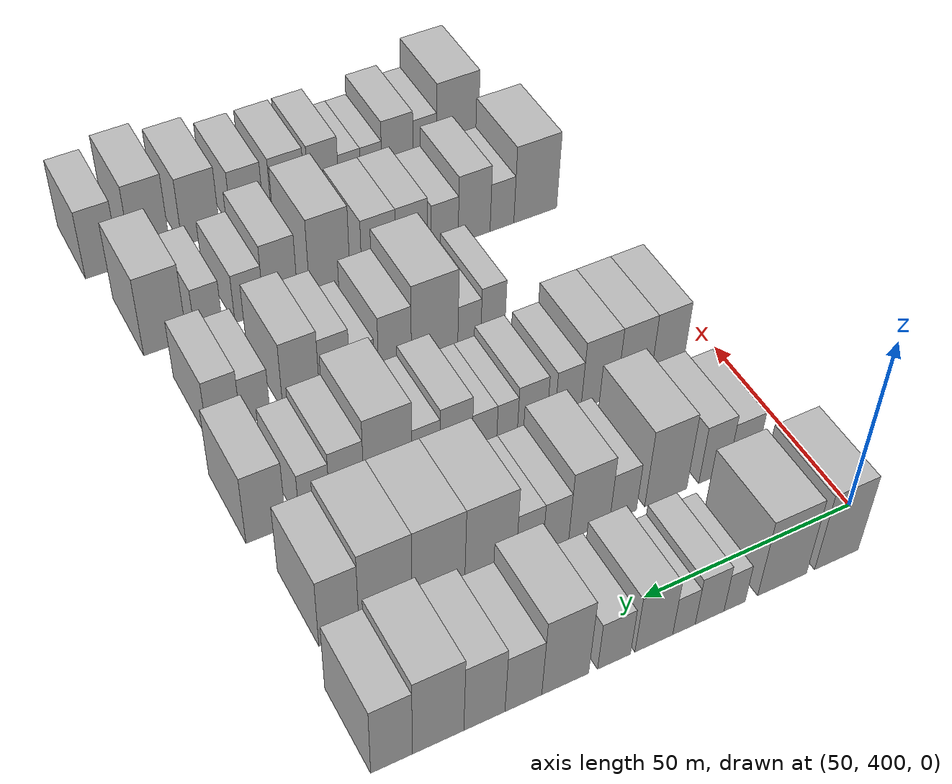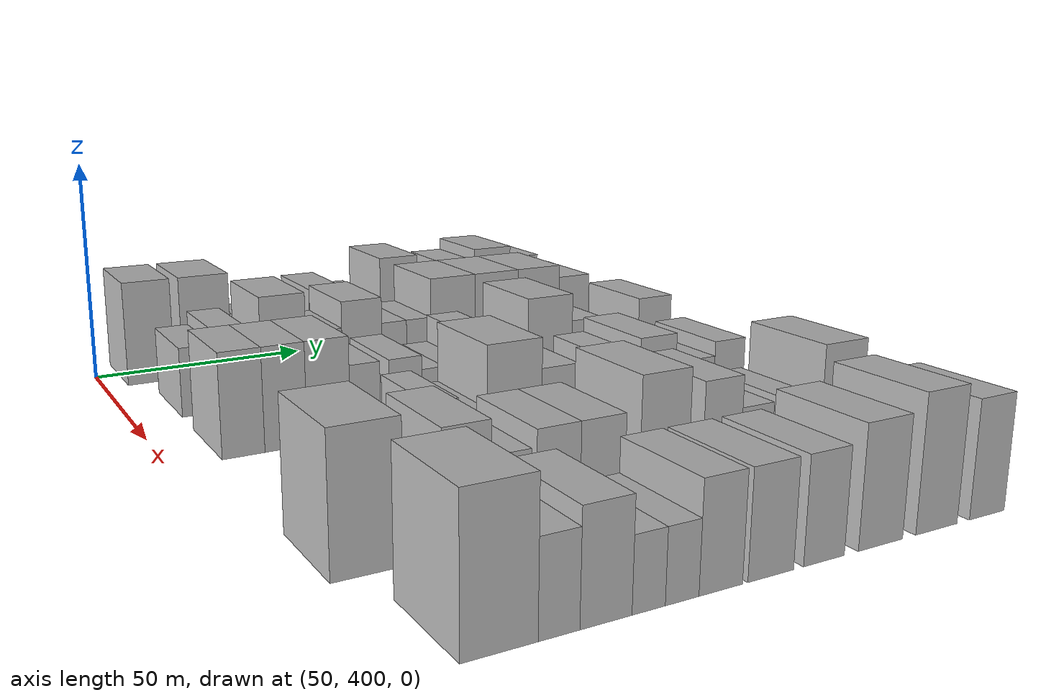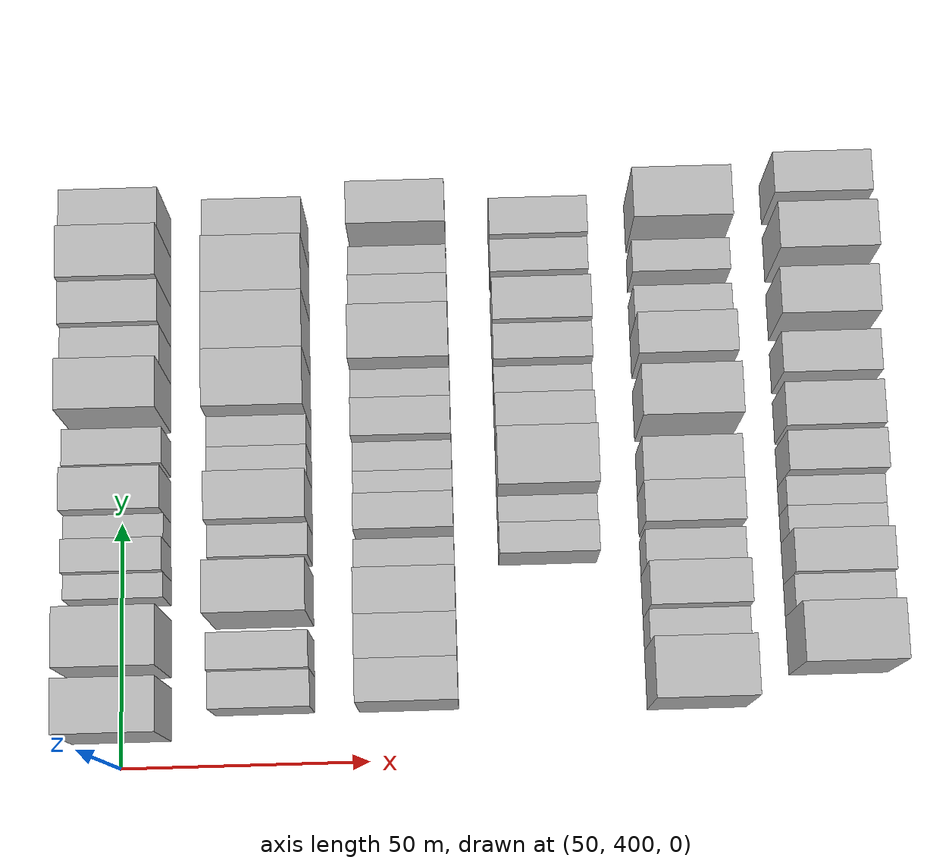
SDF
<sdf version="1.6">
 <world name="default">
  <model name="building_99">
   <static>1</static>
   <pose>50.0000 410.6496 0 0.000000 0.000000 0.000000</pose>
   <link name="link">
    <pose>0 0 12.00 0 0 0</pose>
    <collision name="collision"><geometry><box><size>20.0000 10.7286 24.0000</size></box></geometry></collision>
    <visual name="visual">
     <cast_shadows>0</cast_shadows>
     <geometry><box><size>20.0000 10.7286 24.0000</size></box></geometry>
     <material>
      <script>
       <uri>model://HANNAS_wall/materials/scripts</uri>
       <uri>model://HANNAS_wall/materials/textures</uri>
       <name>vrc/HANNAS_wall</name>
      </script>
     </material>
    </visual>
   </link>
  </model>
  <model name="building_100">
   <static>1</static>
   <pose>50.0000 423.9099 0 0.000000 0.000000 0.000000</pose>
   <link name="link">
    <pose>0 0 12.00 0 0 0</pose>
    <collision name="collision"><geometry><box><size>20.0000 11.7919 24.0000</size></box></geometry></collision>
    <visual name="visual">
     <cast_shadows>0</cast_shadows>
     <geometry><box><size>20.0000 11.7919 24.0000</size></box></geometry>
     <material>
      <script>
       <uri>model://HANNAS_wall/materials/scripts</uri>
       <uri>model://HANNAS_wall/materials/textures</uri>
       <name>vrc/HANNAS_wall</name>
      </script>
     </material>
    </visual>
   </link>
  </model>
  <model name="building_101">
   <static>1</static>
   <pose>50.0000 435.3170 0 0.000000 0.000000 0.000000</pose>
   <link name="link">
    <pose>0 0 6.00 0 0 0</pose>
    <collision name="collision"><geometry><box><size>20.0000 5.0224 12.0000</size></box></geometry></collision>
    <visual name="visual">
     <cast_shadows>0</cast_shadows>
     <geometry><box><size>20.0000 5.0224 12.0000</size></box></geometry>
     <material>
      <script>
       <uri>model://HANNAS_wall/materials/scripts</uri>
       <uri>model://HANNAS_wall/materials/textures</uri>
       <name>vrc/HANNAS_wall</name>
      </script>
     </material>
    </visual>
   </link>
  </model>
  <model name="building_102">
   <static>1</static>
   <pose>50.0000 441.2024 0 0.000000 0.000000 0.000000</pose>
   <link name="link">
    <pose>0 0 7.50 0 0 0</pose>
    <collision name="collision"><geometry><box><size>20.0000 6.7484 15.0000</size></box></geometry></collision>
    <visual name="visual">
     <cast_shadows>0</cast_shadows>
     <geometry><box><size>20.0000 6.7484 15.0000</size></box></geometry>
     <material>
      <script>
       <uri>model://HANNAS_wall/materials/scripts</uri>
       <uri>model://HANNAS_wall/materials/textures</uri>
       <name>vrc/HANNAS_wall</name>
      </script>
     </material>
    </visual>
   </link>
  </model>
  <model name="building_103">
   <static>1</static>
   <pose>50.0000 447.1799 0 0.000000 0.000000 0.000000</pose>
   <link name="link">
    <pose>0 0 6.00 0 0 0</pose>
    <collision name="collision"><geometry><box><size>20.0000 5.2066 12.0000</size></box></geometry></collision>
    <visual name="visual">
     <cast_shadows>0</cast_shadows>
     <geometry><box><size>20.0000 5.2066 12.0000</size></box></geometry>
     <material>
      <script>
       <uri>model://HANNAS_wall/materials/scripts</uri>
       <uri>model://HANNAS_wall/materials/textures</uri>
       <name>vrc/HANNAS_wall</name>
      </script>
     </material>
    </visual>
   </link>
  </model>
  <model name="building_104">
   <static>1</static>
   <pose>50.0000 454.1025 0 0.000000 0.000000 0.000000</pose>
   <link name="link">
    <pose>0 0 9.00 0 0 0</pose>
    <collision name="collision"><geometry><box><size>20.0000 8.6387 18.0000</size></box></geometry></collision>
    <visual name="visual">
     <cast_shadows>0</cast_shadows>
     <geometry><box><size>20.0000 8.6387 18.0000</size></box></geometry>
     <material>
      <script>
       <uri>model://HANNAS_wall/materials/scripts</uri>
       <uri>model://HANNAS_wall/materials/textures</uri>
       <name>vrc/HANNAS_wall</name>
      </script>
     </material>
    </visual>
   </link>
  </model>
  <model name="building_105">
   <static>1</static>
   <pose>50.0000 463.1273 0 0.000000 0.000000 0.000000</pose>
   <link name="link">
    <pose>0 0 7.50 0 0 0</pose>
    <collision name="collision"><geometry><box><size>20.0000 7.4109 15.0000</size></box></geometry></collision>
    <visual name="visual">
     <cast_shadows>0</cast_shadows>
     <geometry><box><size>20.0000 7.4109 15.0000</size></box></geometry>
     <material>
      <script>
       <uri>model://HANNAS_wall/materials/scripts</uri>
       <uri>model://HANNAS_wall/materials/textures</uri>
       <name>vrc/HANNAS_wall</name>
      </script>
     </material>
    </visual>
   </link>
  </model>
  <model name="building_106">
   <static>1</static>
   <pose>50.0000 474.0001 0 0.000000 0.000000 0.000000</pose>
   <link name="link">
    <pose>0 0 12.00 0 0 0</pose>
    <collision name="collision"><geometry><box><size>20.0000 10.3346 24.0000</size></box></geometry></collision>
    <visual name="visual">
     <cast_shadows>0</cast_shadows>
     <geometry><box><size>20.0000 10.3346 24.0000</size></box></geometry>
     <material>
      <script>
       <uri>model://HANNAS_wall/materials/scripts</uri>
       <uri>model://HANNAS_wall/materials/textures</uri>
       <name>vrc/HANNAS_wall</name>
      </script>
     </material>
    </visual>
   </link>
  </model>
  <model name="building_107">
   <static>1</static>
   <pose>50.0000 483.1509 0 0.000000 0.000000 0.000000</pose>
   <link name="link">
    <pose>0 0 9.00 0 0 0</pose>
    <collision name="collision"><geometry><box><size>20.0000 7.9672 18.0000</size></box></geometry></collision>
    <visual name="visual">
     <cast_shadows>0</cast_shadows>
     <geometry><box><size>20.0000 7.9672 18.0000</size></box></geometry>
     <material>
      <script>
       <uri>model://HANNAS_wall/materials/scripts</uri>
       <uri>model://HANNAS_wall/materials/textures</uri>
       <name>vrc/HANNAS_wall</name>
      </script>
     </material>
    </visual>
   </link>
  </model>
  <model name="building_108">
   <static>1</static>
   <pose>50.0000 491.5200 0 0.000000 0.000000 0.000000</pose>
   <link name="link">
    <pose>0 0 10.50 0 0 0</pose>
    <collision name="collision"><geometry><box><size>20.0000 8.7708 21.0000</size></box></geometry></collision>
    <visual name="visual">
     <cast_shadows>0</cast_shadows>
     <geometry><box><size>20.0000 8.7708 21.0000</size></box></geometry>
     <material>
      <script>
       <uri>model://HANNAS_wall/materials/scripts</uri>
       <uri>model://HANNAS_wall/materials/textures</uri>
       <name>vrc/HANNAS_wall</name>
      </script>
     </material>
    </visual>
   </link>
  </model>
  <model name="building_109">
   <static>1</static>
   <pose>50.0000 501.2824 0 0.000000 0.000000 0.000000</pose>
   <link name="link">
    <pose>0 0 12.00 0 0 0</pose>
    <collision name="collision"><geometry><box><size>20.0000 10.7541 24.0000</size></box></geometry></collision>
    <visual name="visual">
     <cast_shadows>0</cast_shadows>
     <geometry><box><size>20.0000 10.7541 24.0000</size></box></geometry>
     <material>
      <script>
       <uri>model://HANNAS_wall/materials/scripts</uri>
       <uri>model://HANNAS_wall/materials/textures</uri>
       <name>vrc/HANNAS_wall</name>
      </script>
     </material>
    </visual>
   </link>
  </model>
  <model name="building_110">
   <static>1</static>
   <pose>50.0000 510.9375 0 0.000000 0.000000 0.000000</pose>
   <link name="link">
    <pose>0 0 10.50 0 0 0</pose>
    <collision name="collision"><geometry><box><size>20.0000 8.5560 21.0000</size></box></geometry></collision>
    <visual name="visual">
     <cast_shadows>0</cast_shadows>
     <geometry><box><size>20.0000 8.5560 21.0000</size></box></geometry>
     <material>
      <script>
       <uri>model://HANNAS_wall/materials/scripts</uri>
       <uri>model://HANNAS_wall/materials/textures</uri>
       <name>vrc/HANNAS_wall</name>
      </script>
     </material>
    </visual>
   </link>
  </model>
  <model name="building_209">
   <static>1</static>
   <pose>79.0000 413.7463 0 0.000000 0.000000 0.000000</pose>
   <link name="link">
    <pose>0 0 7.50 0 0 0</pose>
    <collision name="collision"><geometry><box><size>20.0000 7.2908 15.0000</size></box></geometry></collision>
    <visual name="visual">
     <cast_shadows>0</cast_shadows>
     <geometry><box><size>20.0000 7.2908 15.0000</size></box></geometry>
     <material>
      <script>
       <uri>model://HANNAS_wall/materials/scripts</uri>
       <uri>model://HANNAS_wall/materials/textures</uri>
       <name>vrc/HANNAS_wall</name>
      </script>
     </material>
    </visual>
   </link>
  </model>
  <model name="building_210">
   <static>1</static>
   <pose>79.0000 421.0485 0 0.000000 0.000000 0.000000</pose>
   <link name="link">
    <pose>0 0 9.00 0 0 0</pose>
    <collision name="collision"><geometry><box><size>20.0000 7.3138 18.0000</size></box></geometry></collision>
    <visual name="visual">
     <cast_shadows>0</cast_shadows>
     <geometry><box><size>20.0000 7.3138 18.0000</size></box></geometry>
     <material>
      <script>
       <uri>model://HANNAS_wall/materials/scripts</uri>
       <uri>model://HANNAS_wall/materials/textures</uri>
       <name>vrc/HANNAS_wall</name>
      </script>
     </material>
    </visual>
   </link>
  </model>
  <model name="building_211">
   <static>1</static>
   <pose>79.0000 432.8737 0 0.000000 0.000000 0.000000</pose>
   <link name="link">
    <pose>0 0 12.00 0 0 0</pose>
    <collision name="collision"><geometry><box><size>20.0000 10.3365 24.0000</size></box></geometry></collision>
    <visual name="visual">
     <cast_shadows>0</cast_shadows>
     <geometry><box><size>20.0000 10.3365 24.0000</size></box></geometry>
     <material>
      <script>
       <uri>model://HANNAS_wall/materials/scripts</uri>
       <uri>model://HANNAS_wall/materials/textures</uri>
       <name>vrc/HANNAS_wall</name>
      </script>
     </material>
    </visual>
   </link>
  </model>
  <model name="building_212">
   <static>1</static>
   <pose>79.0000 443.2793 0 0.000000 0.000000 0.000000</pose>
   <link name="link">
    <pose>0 0 7.50 0 0 0</pose>
    <collision name="collision"><geometry><box><size>20.0000 6.4747 15.0000</size></box></geometry></collision>
    <visual name="visual">
     <cast_shadows>0</cast_shadows>
     <geometry><box><size>20.0000 6.4747 15.0000</size></box></geometry>
     <material>
      <script>
       <uri>model://HANNAS_wall/materials/scripts</uri>
       <uri>model://HANNAS_wall/materials/textures</uri>
       <name>vrc/HANNAS_wall</name>
      </script>
     </material>
    </visual>
   </link>
  </model>
  <model name="building_213">
   <static>1</static>
   <pose>79.0000 451.3792 0 0.000000 0.000000 0.000000</pose>
   <link name="link">
    <pose>0 0 10.50 0 0 0</pose>
    <collision name="collision"><geometry><box><size>20.0000 9.7251 21.0000</size></box></geometry></collision>
    <visual name="visual">
     <cast_shadows>0</cast_shadows>
     <geometry><box><size>20.0000 9.7251 21.0000</size></box></geometry>
     <material>
      <script>
       <uri>model://HANNAS_wall/materials/scripts</uri>
       <uri>model://HANNAS_wall/materials/textures</uri>
       <name>vrc/HANNAS_wall</name>
      </script>
     </material>
    </visual>
   </link>
  </model>
  <model name="building_214">
   <static>1</static>
   <pose>79.0000 459.3230 0 0.000000 0.000000 0.000000</pose>
   <link name="link">
    <pose>0 0 7.50 0 0 0</pose>
    <collision name="collision"><geometry><box><size>20.0000 6.1624 15.0000</size></box></geometry></collision>
    <visual name="visual">
     <cast_shadows>0</cast_shadows>
     <geometry><box><size>20.0000 6.1624 15.0000</size></box></geometry>
     <material>
      <script>
       <uri>model://HANNAS_wall/materials/scripts</uri>
       <uri>model://HANNAS_wall/materials/textures</uri>
       <name>vrc/HANNAS_wall</name>
      </script>
     </material>
    </visual>
   </link>
  </model>
  <model name="building_215">
   <static>1</static>
   <pose>79.0000 465.5050 0 0.000000 0.000000 0.000000</pose>
   <link name="link">
    <pose>0 0 7.50 0 0 0</pose>
    <collision name="collision"><geometry><box><size>20.0000 6.2018 15.0000</size></box></geometry></collision>
    <visual name="visual">
     <cast_shadows>0</cast_shadows>
     <geometry><box><size>20.0000 6.2018 15.0000</size></box></geometry>
     <material>
      <script>
       <uri>model://HANNAS_wall/materials/scripts</uri>
       <uri>model://HANNAS_wall/materials/textures</uri>
       <name>vrc/HANNAS_wall</name>
      </script>
     </material>
    </visual>
   </link>
  </model>
  <model name="building_216">
   <static>1</static>
   <pose>79.0000 474.4493 0 0.000000 0.000000 0.000000</pose>
   <link name="link">
    <pose>0 0 12.00 0 0 0</pose>
    <collision name="collision"><geometry><box><size>20.0000 11.6868 24.0000</size></box></geometry></collision>
    <visual name="visual">
     <cast_shadows>0</cast_shadows>
     <geometry><box><size>20.0000 11.6868 24.0000</size></box></geometry>
     <material>
      <script>
       <uri>model://HANNAS_wall/materials/scripts</uri>
       <uri>model://HANNAS_wall/materials/textures</uri>
       <name>vrc/HANNAS_wall</name>
      </script>
     </material>
    </visual>
   </link>
  </model>
  <model name="building_217">
   <static>1</static>
   <pose>79.0000 486.1725 0 0.000000 0.000000 0.000000</pose>
   <link name="link">
    <pose>0 0 12.00 0 0 0</pose>
    <collision name="collision"><geometry><box><size>20.0000 11.7596 24.0000</size></box></geometry></collision>
    <visual name="visual">
     <cast_shadows>0</cast_shadows>
     <geometry><box><size>20.0000 11.7596 24.0000</size></box></geometry>
     <material>
      <script>
       <uri>model://HANNAS_wall/materials/scripts</uri>
       <uri>model://HANNAS_wall/materials/textures</uri>
       <name>vrc/HANNAS_wall</name>
      </script>
     </material>
    </visual>
   </link>
  </model>
  <model name="building_218">
   <static>1</static>
   <pose>79.0000 497.8626 0 0.000000 0.000000 0.000000</pose>
   <link name="link">
    <pose>0 0 12.00 0 0 0</pose>
    <collision name="collision"><geometry><box><size>20.0000 11.6205 24.0000</size></box></geometry></collision>
    <visual name="visual">
     <cast_shadows>0</cast_shadows>
     <geometry><box><size>20.0000 11.6205 24.0000</size></box></geometry>
     <material>
      <script>
       <uri>model://HANNAS_wall/materials/scripts</uri>
       <uri>model://HANNAS_wall/materials/textures</uri>
       <name>vrc/HANNAS_wall</name>
      </script>
     </material>
    </visual>
   </link>
  </model>
  <model name="building_219">
   <static>1</static>
   <pose>79.0000 507.9875 0 0.000000 0.000000 0.000000</pose>
   <link name="link">
    <pose>0 0 10.50 0 0 0</pose>
    <collision name="collision"><geometry><box><size>20.0000 8.6292 21.0000</size></box></geometry></collision>
    <visual name="visual">
     <cast_shadows>0</cast_shadows>
     <geometry><box><size>20.0000 8.6292 21.0000</size></box></geometry>
     <material>
      <script>
       <uri>model://HANNAS_wall/materials/scripts</uri>
       <uri>model://HANNAS_wall/materials/textures</uri>
       <name>vrc/HANNAS_wall</name>
      </script>
     </material>
    </visual>
   </link>
  </model>
  <model name="building_316">
   <static>1</static>
   <pose>108.0000 414.2007 0 0.000000 0.000000 0.000000</pose>
   <link name="link">
    <pose>0 0 10.50 0 0 0</pose>
    <collision name="collision"><geometry><box><size>20.0000 8.4366 21.0000</size></box></geometry></collision>
    <visual name="visual">
     <cast_shadows>0</cast_shadows>
     <geometry><box><size>20.0000 8.4366 21.0000</size></box></geometry>
     <material>
      <script>
       <uri>model://HANNAS_wall/materials/scripts</uri>
       <uri>model://HANNAS_wall/materials/textures</uri>
       <name>vrc/HANNAS_wall</name>
      </script>
     </material>
    </visual>
   </link>
  </model>
  <model name="building_317">
   <static>1</static>
   <pose>108.0000 422.7526 0 0.000000 0.000000 0.000000</pose>
   <link name="link">
    <pose>0 0 10.50 0 0 0</pose>
    <collision name="collision"><geometry><box><size>20.0000 8.6672 21.0000</size></box></geometry></collision>
    <visual name="visual">
     <cast_shadows>0</cast_shadows>
     <geometry><box><size>20.0000 8.6672 21.0000</size></box></geometry>
     <material>
      <script>
       <uri>model://HANNAS_wall/materials/scripts</uri>
       <uri>model://HANNAS_wall/materials/textures</uri>
       <name>vrc/HANNAS_wall</name>
      </script>
     </material>
    </visual>
   </link>
  </model>
  <model name="building_318">
   <static>1</static>
   <pose>108.0000 431.6544 0 0.000000 0.000000 0.000000</pose>
   <link name="link">
    <pose>0 0 10.50 0 0 0</pose>
    <collision name="collision"><geometry><box><size>20.0000 9.1364 21.0000</size></box></geometry></collision>
    <visual name="visual">
     <cast_shadows>0</cast_shadows>
     <geometry><box><size>20.0000 9.1364 21.0000</size></box></geometry>
     <material>
      <script>
       <uri>model://HANNAS_wall/materials/scripts</uri>
       <uri>model://HANNAS_wall/materials/textures</uri>
       <name>vrc/HANNAS_wall</name>
      </script>
     </material>
    </visual>
   </link>
  </model>
  <model name="building_319">
   <static>1</static>
   <pose>108.0000 439.5161 0 0.000000 0.000000 0.000000</pose>
   <link name="link">
    <pose>0 0 7.50 0 0 0</pose>
    <collision name="collision"><geometry><box><size>20.0000 6.5869 15.0000</size></box></geometry></collision>
    <visual name="visual">
     <cast_shadows>0</cast_shadows>
     <geometry><box><size>20.0000 6.5869 15.0000</size></box></geometry>
     <material>
      <script>
       <uri>model://HANNAS_wall/materials/scripts</uri>
       <uri>model://HANNAS_wall/materials/textures</uri>
       <name>vrc/HANNAS_wall</name>
      </script>
     </material>
    </visual>
   </link>
  </model>
  <model name="building_320">
   <static>1</static>
   <pose>108.0000 448.4615 0 0.000000 0.000000 0.000000</pose>
   <link name="link">
    <pose>0 0 7.50 0 0 0</pose>
    <collision name="collision"><geometry><box><size>20.0000 7.3040 15.0000</size></box></geometry></collision>
    <visual name="visual">
     <cast_shadows>0</cast_shadows>
     <geometry><box><size>20.0000 7.3040 15.0000</size></box></geometry>
     <material>
      <script>
       <uri>model://HANNAS_wall/materials/scripts</uri>
       <uri>model://HANNAS_wall/materials/textures</uri>
       <name>vrc/HANNAS_wall</name>
      </script>
     </material>
    </visual>
   </link>
  </model>
  <model name="building_321">
   <static>1</static>
   <pose>108.0000 454.6419 0 0.000000 0.000000 0.000000</pose>
   <link name="link">
    <pose>0 0 6.00 0 0 0</pose>
    <collision name="collision"><geometry><box><size>20.0000 5.0567 12.0000</size></box></geometry></collision>
    <visual name="visual">
     <cast_shadows>0</cast_shadows>
     <geometry><box><size>20.0000 5.0567 12.0000</size></box></geometry>
     <material>
      <script>
       <uri>model://HANNAS_wall/materials/scripts</uri>
       <uri>model://HANNAS_wall/materials/textures</uri>
       <name>vrc/HANNAS_wall</name>
      </script>
     </material>
    </visual>
   </link>
  </model>
  <model name="building_322">
   <static>1</static>
   <pose>108.0000 460.1602 0 0.000000 0.000000 0.000000</pose>
   <link name="link">
    <pose>0 0 6.00 0 0 0</pose>
    <collision name="collision"><geometry><box><size>20.0000 5.9799 12.0000</size></box></geometry></collision>
    <visual name="visual">
     <cast_shadows>0</cast_shadows>
     <geometry><box><size>20.0000 5.9799 12.0000</size></box></geometry>
     <material>
      <script>
       <uri>model://HANNAS_wall/materials/scripts</uri>
       <uri>model://HANNAS_wall/materials/textures</uri>
       <name>vrc/HANNAS_wall</name>
      </script>
     </material>
    </visual>
   </link>
  </model>
  <model name="building_323">
   <static>1</static>
   <pose>108.0000 467.0199 0 0.000000 0.000000 0.000000</pose>
   <link name="link">
    <pose>0 0 9.00 0 0 0</pose>
    <collision name="collision"><geometry><box><size>20.0000 7.7395 18.0000</size></box></geometry></collision>
    <visual name="visual">
     <cast_shadows>0</cast_shadows>
     <geometry><box><size>20.0000 7.7395 18.0000</size></box></geometry>
     <material>
      <script>
       <uri>model://HANNAS_wall/materials/scripts</uri>
       <uri>model://HANNAS_wall/materials/textures</uri>
       <name>vrc/HANNAS_wall</name>
      </script>
     </material>
    </visual>
   </link>
  </model>
  <model name="building_324">
   <static>1</static>
   <pose>108.0000 474.1599 0 0.000000 0.000000 0.000000</pose>
   <link name="link">
    <pose>0 0 7.50 0 0 0</pose>
    <collision name="collision"><geometry><box><size>20.0000 6.5405 15.0000</size></box></geometry></collision>
    <visual name="visual">
     <cast_shadows>0</cast_shadows>
     <geometry><box><size>20.0000 6.5405 15.0000</size></box></geometry>
     <material>
      <script>
       <uri>model://HANNAS_wall/materials/scripts</uri>
       <uri>model://HANNAS_wall/materials/textures</uri>
       <name>vrc/HANNAS_wall</name>
      </script>
     </material>
    </visual>
   </link>
  </model>
  <model name="building_325">
   <static>1</static>
   <pose>108.0000 483.0061 0 0.000000 0.000000 0.000000</pose>
   <link name="link">
    <pose>0 0 12.00 0 0 0</pose>
    <collision name="collision"><geometry><box><size>20.0000 11.1519 24.0000</size></box></geometry></collision>
    <visual name="visual">
     <cast_shadows>0</cast_shadows>
     <geometry><box><size>20.0000 11.1519 24.0000</size></box></geometry>
     <material>
      <script>
       <uri>model://HANNAS_wall/materials/scripts</uri>
       <uri>model://HANNAS_wall/materials/textures</uri>
       <name>vrc/HANNAS_wall</name>
      </script>
     </material>
    </visual>
   </link>
  </model>
  <model name="building_326">
   <static>1</static>
   <pose>108.0000 492.5051 0 0.000000 0.000000 0.000000</pose>
   <link name="link">
    <pose>0 0 9.00 0 0 0</pose>
    <collision name="collision"><geometry><box><size>20.0000 7.8461 18.0000</size></box></geometry></collision>
    <visual name="visual">
     <cast_shadows>0</cast_shadows>
     <geometry><box><size>20.0000 7.8461 18.0000</size></box></geometry>
     <material>
      <script>
       <uri>model://HANNAS_wall/materials/scripts</uri>
       <uri>model://HANNAS_wall/materials/textures</uri>
       <name>vrc/HANNAS_wall</name>
      </script>
     </material>
    </visual>
   </link>
  </model>
  <model name="building_327">
   <static>1</static>
   <pose>108.0000 499.8992 0 0.000000 0.000000 0.000000</pose>
   <link name="link">
    <pose>0 0 7.50 0 0 0</pose>
    <collision name="collision"><geometry><box><size>20.0000 6.9422 15.0000</size></box></geometry></collision>
    <visual name="visual">
     <cast_shadows>0</cast_shadows>
     <geometry><box><size>20.0000 6.9422 15.0000</size></box></geometry>
     <material>
      <script>
       <uri>model://HANNAS_wall/materials/scripts</uri>
       <uri>model://HANNAS_wall/materials/textures</uri>
       <name>vrc/HANNAS_wall</name>
      </script>
     </material>
    </visual>
   </link>
  </model>
  <model name="building_328">
   <static>1</static>
   <pose>108.0000 510.8391 0 0.000000 0.000000 0.000000</pose>
   <link name="link">
    <pose>0 0 10.50 0 0 0</pose>
    <collision name="collision"><geometry><box><size>20.0000 8.9376 21.0000</size></box></geometry></collision>
    <visual name="visual">
     <cast_shadows>0</cast_shadows>
     <geometry><box><size>20.0000 8.9376 21.0000</size></box></geometry>
     <material>
      <script>
       <uri>model://HANNAS_wall/materials/scripts</uri>
       <uri>model://HANNAS_wall/materials/textures</uri>
       <name>vrc/HANNAS_wall</name>
      </script>
     </material>
    </visual>
   </link>
  </model>
  <model name="building_435">
   <static>1</static>
   <pose>137.0000 442.2341 0 0.000000 0.000000 0.000000</pose>
   <link name="link">
    <pose>0 0 7.50 0 0 0</pose>
    <collision name="collision"><geometry><box><size>20.0000 6.2194 15.0000</size></box></geometry></collision>
    <visual name="visual">
     <cast_shadows>0</cast_shadows>
     <geometry><box><size>20.0000 6.2194 15.0000</size></box></geometry>
     <material>
      <script>
       <uri>model://HANNAS_wall/materials/scripts</uri>
       <uri>model://HANNAS_wall/materials/textures</uri>
       <name>vrc/HANNAS_wall</name>
      </script>
     </material>
    </visual>
   </link>
  </model>
  <model name="building_436">
   <static>1</static>
   <pose>137.0000 448.2945 0 0.000000 0.000000 0.000000</pose>
   <link name="link">
    <pose>0 0 6.00 0 0 0</pose>
    <collision name="collision"><geometry><box><size>20.0000 5.9013 12.0000</size></box></geometry></collision>
    <visual name="visual">
     <cast_shadows>0</cast_shadows>
     <geometry><box><size>20.0000 5.9013 12.0000</size></box></geometry>
     <material>
      <script>
       <uri>model://HANNAS_wall/materials/scripts</uri>
       <uri>model://HANNAS_wall/materials/textures</uri>
       <name>vrc/HANNAS_wall</name>
      </script>
     </material>
    </visual>
   </link>
  </model>
  <model name="building_437">
   <static>1</static>
   <pose>137.0000 457.0926 0 0.000000 0.000000 0.000000</pose>
   <link name="link">
    <pose>0 0 12.00 0 0 0</pose>
    <collision name="collision"><geometry><box><size>20.0000 11.6949 24.0000</size></box></geometry></collision>
    <visual name="visual">
     <cast_shadows>0</cast_shadows>
     <geometry><box><size>20.0000 11.6949 24.0000</size></box></geometry>
     <material>
      <script>
       <uri>model://HANNAS_wall/materials/scripts</uri>
       <uri>model://HANNAS_wall/materials/textures</uri>
       <name>vrc/HANNAS_wall</name>
      </script>
     </material>
    </visual>
   </link>
  </model>
  <model name="building_438">
   <static>1</static>
   <pose>137.0000 467.0154 0 0.000000 0.000000 0.000000</pose>
   <link name="link">
    <pose>0 0 9.00 0 0 0</pose>
    <collision name="collision"><geometry><box><size>20.0000 8.1508 18.0000</size></box></geometry></collision>
    <visual name="visual">
     <cast_shadows>0</cast_shadows>
     <geometry><box><size>20.0000 8.1508 18.0000</size></box></geometry>
     <material>
      <script>
       <uri>model://HANNAS_wall/materials/scripts</uri>
       <uri>model://HANNAS_wall/materials/textures</uri>
       <name>vrc/HANNAS_wall</name>
      </script>
     </material>
    </visual>
   </link>
  </model>
  <model name="building_439">
   <static>1</static>
   <pose>137.0000 475.0720 0 0.000000 0.000000 0.000000</pose>
   <link name="link">
    <pose>0 0 6.00 0 0 0</pose>
    <collision name="collision"><geometry><box><size>20.0000 5.9625 12.0000</size></box></geometry></collision>
    <visual name="visual">
     <cast_shadows>0</cast_shadows>
     <geometry><box><size>20.0000 5.9625 12.0000</size></box></geometry>
     <material>
      <script>
       <uri>model://HANNAS_wall/materials/scripts</uri>
       <uri>model://HANNAS_wall/materials/textures</uri>
       <name>vrc/HANNAS_wall</name>
      </script>
     </material>
    </visual>
   </link>
  </model>
  <model name="building_440">
   <static>1</static>
   <pose>137.0000 481.7429 0 0.000000 0.000000 0.000000</pose>
   <link name="link">
    <pose>0 0 9.00 0 0 0</pose>
    <collision name="collision"><geometry><box><size>20.0000 7.3792 18.0000</size></box></geometry></collision>
    <visual name="visual">
     <cast_shadows>0</cast_shadows>
     <geometry><box><size>20.0000 7.3792 18.0000</size></box></geometry>
     <material>
      <script>
       <uri>model://HANNAS_wall/materials/scripts</uri>
       <uri>model://HANNAS_wall/materials/textures</uri>
       <name>vrc/HANNAS_wall</name>
      </script>
     </material>
    </visual>
   </link>
  </model>
  <model name="building_441">
   <static>1</static>
   <pose>137.0000 489.8302 0 0.000000 0.000000 0.000000</pose>
   <link name="link">
    <pose>0 0 10.50 0 0 0</pose>
    <collision name="collision"><geometry><box><size>20.0000 8.7955 21.0000</size></box></geometry></collision>
    <visual name="visual">
     <cast_shadows>0</cast_shadows>
     <geometry><box><size>20.0000 8.7955 21.0000</size></box></geometry>
     <material>
      <script>
       <uri>model://HANNAS_wall/materials/scripts</uri>
       <uri>model://HANNAS_wall/materials/textures</uri>
       <name>vrc/HANNAS_wall</name>
      </script>
     </material>
    </visual>
   </link>
  </model>
  <model name="building_442">
   <static>1</static>
   <pose>137.0000 500.6755 0 0.000000 0.000000 0.000000</pose>
   <link name="link">
    <pose>0 0 7.50 0 0 0</pose>
    <collision name="collision"><geometry><box><size>20.0000 6.8950 15.0000</size></box></geometry></collision>
    <visual name="visual">
     <cast_shadows>0</cast_shadows>
     <geometry><box><size>20.0000 6.8950 15.0000</size></box></geometry>
     <material>
      <script>
       <uri>model://HANNAS_wall/materials/scripts</uri>
       <uri>model://HANNAS_wall/materials/textures</uri>
       <name>vrc/HANNAS_wall</name>
      </script>
     </material>
    </visual>
   </link>
  </model>
  <model name="building_443">
   <static>1</static>
   <pose>137.0000 508.0073 0 0.000000 0.000000 0.000000</pose>
   <link name="link">
    <pose>0 0 9.00 0 0 0</pose>
    <collision name="collision"><geometry><box><size>20.0000 7.7686 18.0000</size></box></geometry></collision>
    <visual name="visual">
     <cast_shadows>0</cast_shadows>
     <geometry><box><size>20.0000 7.7686 18.0000</size></box></geometry>
     <material>
      <script>
       <uri>model://HANNAS_wall/materials/scripts</uri>
       <uri>model://HANNAS_wall/materials/textures</uri>
       <name>vrc/HANNAS_wall</name>
      </script>
     </material>
    </visual>
   </link>
  </model>
  <model name="building_553">
   <static>1</static>
   <pose>166.0000 414.6962 0 0.000000 0.000000 0.000000</pose>
   <link name="link">
    <pose>0 0 12.00 0 0 0</pose>
    <collision name="collision"><geometry><box><size>20.0000 11.9075 24.0000</size></box></geometry></collision>
    <visual name="visual">
     <cast_shadows>0</cast_shadows>
     <geometry><box><size>20.0000 11.9075 24.0000</size></box></geometry>
     <material>
      <script>
       <uri>model://HANNAS_wall/materials/scripts</uri>
       <uri>model://HANNAS_wall/materials/textures</uri>
       <name>vrc/HANNAS_wall</name>
      </script>
     </material>
    </visual>
   </link>
  </model>
  <model name="building_554">
   <static>1</static>
   <pose>166.0000 423.9106 0 0.000000 0.000000 0.000000</pose>
   <link name="link">
    <pose>0 0 7.50 0 0 0</pose>
    <collision name="collision"><geometry><box><size>20.0000 6.5212 15.0000</size></box></geometry></collision>
    <visual name="visual">
     <cast_shadows>0</cast_shadows>
     <geometry><box><size>20.0000 6.5212 15.0000</size></box></geometry>
     <material>
      <script>
       <uri>model://HANNAS_wall/materials/scripts</uri>
       <uri>model://HANNAS_wall/materials/textures</uri>
       <name>vrc/HANNAS_wall</name>
      </script>
     </material>
    </visual>
   </link>
  </model>
  <model name="building_555">
   <static>1</static>
   <pose>166.0000 431.5086 0 0.000000 0.000000 0.000000</pose>
   <link name="link">
    <pose>0 0 10.50 0 0 0</pose>
    <collision name="collision"><geometry><box><size>20.0000 8.6749 21.0000</size></box></geometry></collision>
    <visual name="visual">
     <cast_shadows>0</cast_shadows>
     <geometry><box><size>20.0000 8.6749 21.0000</size></box></geometry>
     <material>
      <script>
       <uri>model://HANNAS_wall/materials/scripts</uri>
       <uri>model://HANNAS_wall/materials/textures</uri>
       <name>vrc/HANNAS_wall</name>
      </script>
     </material>
    </visual>
   </link>
  </model>
  <model name="building_556">
   <static>1</static>
   <pose>166.0000 439.4607 0 0.000000 0.000000 0.000000</pose>
   <link name="link">
    <pose>0 0 7.50 0 0 0</pose>
    <collision name="collision"><geometry><box><size>20.0000 7.2293 15.0000</size></box></geometry></collision>
    <visual name="visual">
     <cast_shadows>0</cast_shadows>
     <geometry><box><size>20.0000 7.2293 15.0000</size></box></geometry>
     <material>
      <script>
       <uri>model://HANNAS_wall/materials/scripts</uri>
       <uri>model://HANNAS_wall/materials/textures</uri>
       <name>vrc/HANNAS_wall</name>
      </script>
     </material>
    </visual>
   </link>
  </model>
  <model name="building_557">
   <static>1</static>
   <pose>166.0000 448.2528 0 0.000000 0.000000 0.000000</pose>
   <link name="link">
    <pose>0 0 9.00 0 0 0</pose>
    <collision name="collision"><geometry><box><size>20.0000 8.3548 18.0000</size></box></geometry></collision>
    <visual name="visual">
     <cast_shadows>0</cast_shadows>
     <geometry><box><size>20.0000 8.3548 18.0000</size></box></geometry>
     <material>
      <script>
       <uri>model://HANNAS_wall/materials/scripts</uri>
       <uri>model://HANNAS_wall/materials/textures</uri>
       <name>vrc/HANNAS_wall</name>
      </script>
     </material>
    </visual>
   </link>
  </model>
  <model name="building_558">
   <static>1</static>
   <pose>166.0000 456.8565 0 0.000000 0.000000 0.000000</pose>
   <link name="link">
    <pose>0 0 9.00 0 0 0</pose>
    <collision name="collision"><geometry><box><size>20.0000 8.8528 18.0000</size></box></geometry></collision>
    <visual name="visual">
     <cast_shadows>0</cast_shadows>
     <geometry><box><size>20.0000 8.8528 18.0000</size></box></geometry>
     <material>
      <script>
       <uri>model://HANNAS_wall/materials/scripts</uri>
       <uri>model://HANNAS_wall/materials/textures</uri>
       <name>vrc/HANNAS_wall</name>
      </script>
     </material>
    </visual>
   </link>
  </model>
  <model name="building_559">
   <static>1</static>
   <pose>166.0000 469.4518 0 0.000000 0.000000 0.000000</pose>
   <link name="link">
    <pose>0 0 12.00 0 0 0</pose>
    <collision name="collision"><geometry><box><size>20.0000 10.3378 24.0000</size></box></geometry></collision>
    <visual name="visual">
     <cast_shadows>0</cast_shadows>
     <geometry><box><size>20.0000 10.3378 24.0000</size></box></geometry>
     <material>
      <script>
       <uri>model://HANNAS_wall/materials/scripts</uri>
       <uri>model://HANNAS_wall/materials/textures</uri>
       <name>vrc/HANNAS_wall</name>
      </script>
     </material>
    </visual>
   </link>
  </model>
  <model name="building_560">
   <static>1</static>
   <pose>166.0000 481.8669 0 0.000000 0.000000 0.000000</pose>
   <link name="link">
    <pose>0 0 10.50 0 0 0</pose>
    <collision name="collision"><geometry><box><size>20.0000 8.4922 21.0000</size></box></geometry></collision>
    <visual name="visual">
     <cast_shadows>0</cast_shadows>
     <geometry><box><size>20.0000 8.4922 21.0000</size></box></geometry>
     <material>
      <script>
       <uri>model://HANNAS_wall/materials/scripts</uri>
       <uri>model://HANNAS_wall/materials/textures</uri>
       <name>vrc/HANNAS_wall</name>
      </script>
     </material>
    </visual>
   </link>
  </model>
  <model name="building_561">
   <static>1</static>
   <pose>166.0000 489.7342 0 0.000000 0.000000 0.000000</pose>
   <link name="link">
    <pose>0 0 7.50 0 0 0</pose>
    <collision name="collision"><geometry><box><size>20.0000 7.2424 15.0000</size></box></geometry></collision>
    <visual name="visual">
     <cast_shadows>0</cast_shadows>
     <geometry><box><size>20.0000 7.2424 15.0000</size></box></geometry>
     <material>
      <script>
       <uri>model://HANNAS_wall/materials/scripts</uri>
       <uri>model://HANNAS_wall/materials/textures</uri>
       <name>vrc/HANNAS_wall</name>
      </script>
     </material>
    </visual>
   </link>
  </model>
  <model name="building_562">
   <static>1</static>
   <pose>166.0000 499.7012 0 0.000000 0.000000 0.000000</pose>
   <link name="link">
    <pose>0 0 7.50 0 0 0</pose>
    <collision name="collision"><geometry><box><size>20.0000 6.6917 15.0000</size></box></geometry></collision>
    <visual name="visual">
     <cast_shadows>0</cast_shadows>
     <geometry><box><size>20.0000 6.6917 15.0000</size></box></geometry>
     <material>
      <script>
       <uri>model://HANNAS_wall/materials/scripts</uri>
       <uri>model://HANNAS_wall/materials/textures</uri>
       <name>vrc/HANNAS_wall</name>
      </script>
     </material>
    </visual>
   </link>
  </model>
  <model name="building_563">
   <static>1</static>
   <pose>166.0000 510.2626 0 0.000000 0.000000 0.000000</pose>
   <link name="link">
    <pose>0 0 12.00 0 0 0</pose>
    <collision name="collision"><geometry><box><size>20.0000 10.4311 24.0000</size></box></geometry></collision>
    <visual name="visual">
     <cast_shadows>0</cast_shadows>
     <geometry><box><size>20.0000 10.4311 24.0000</size></box></geometry>
     <material>
      <script>
       <uri>model://HANNAS_wall/materials/scripts</uri>
       <uri>model://HANNAS_wall/materials/textures</uri>
       <name>vrc/HANNAS_wall</name>
      </script>
     </material>
    </visual>
   </link>
  </model>
  <model name="building_666">
   <static>1</static>
   <pose>195.0000 420.7541 0 0.000000 0.000000 0.000000</pose>
   <link name="link">
    <pose>0 0 12.00 0 0 0</pose>
    <collision name="collision"><geometry><box><size>20.0000 11.7594 24.0000</size></box></geometry></collision>
    <visual name="visual">
     <cast_shadows>0</cast_shadows>
     <geometry><box><size>20.0000 11.7594 24.0000</size></box></geometry>
     <material>
      <script>
       <uri>model://HANNAS_wall/materials/scripts</uri>
       <uri>model://HANNAS_wall/materials/textures</uri>
       <name>vrc/HANNAS_wall</name>
      </script>
     </material>
    </visual>
   </link>
  </model>
  <model name="building_667">
   <static>1</static>
   <pose>195.0000 429.9339 0 0.000000 0.000000 0.000000</pose>
   <link name="link">
    <pose>0 0 7.50 0 0 0</pose>
    <collision name="collision"><geometry><box><size>20.0000 6.6002 15.0000</size></box></geometry></collision>
    <visual name="visual">
     <cast_shadows>0</cast_shadows>
     <geometry><box><size>20.0000 6.6002 15.0000</size></box></geometry>
     <material>
      <script>
       <uri>model://HANNAS_wall/materials/scripts</uri>
       <uri>model://HANNAS_wall/materials/textures</uri>
       <name>vrc/HANNAS_wall</name>
      </script>
     </material>
    </visual>
   </link>
  </model>
  <model name="building_668">
   <static>1</static>
   <pose>195.0000 437.5413 0 0.000000 0.000000 0.000000</pose>
   <link name="link">
    <pose>0 0 9.00 0 0 0</pose>
    <collision name="collision"><geometry><box><size>20.0000 8.6148 18.0000</size></box></geometry></collision>
    <visual name="visual">
     <cast_shadows>0</cast_shadows>
     <geometry><box><size>20.0000 8.6148 18.0000</size></box></geometry>
     <material>
      <script>
       <uri>model://HANNAS_wall/materials/scripts</uri>
       <uri>model://HANNAS_wall/materials/textures</uri>
       <name>vrc/HANNAS_wall</name>
      </script>
     </material>
    </visual>
   </link>
  </model>
  <model name="building_669">
   <static>1</static>
   <pose>195.0000 444.7177 0 0.000000 0.000000 0.000000</pose>
   <link name="link">
    <pose>0 0 6.00 0 0 0</pose>
    <collision name="collision"><geometry><box><size>20.0000 5.7380 12.0000</size></box></geometry></collision>
    <visual name="visual">
     <cast_shadows>0</cast_shadows>
     <geometry><box><size>20.0000 5.7380 12.0000</size></box></geometry>
     <material>
      <script>
       <uri>model://HANNAS_wall/materials/scripts</uri>
       <uri>model://HANNAS_wall/materials/textures</uri>
       <name>vrc/HANNAS_wall</name>
      </script>
     </material>
    </visual>
   </link>
  </model>
  <model name="building_670">
   <static>1</static>
   <pose>195.0000 450.5841 0 0.000000 0.000000 0.000000</pose>
   <link name="link">
    <pose>0 0 6.00 0 0 0</pose>
    <collision name="collision"><geometry><box><size>20.0000 5.9949 12.0000</size></box></geometry></collision>
    <visual name="visual">
     <cast_shadows>0</cast_shadows>
     <geometry><box><size>20.0000 5.9949 12.0000</size></box></geometry>
     <material>
      <script>
       <uri>model://HANNAS_wall/materials/scripts</uri>
       <uri>model://HANNAS_wall/materials/textures</uri>
       <name>vrc/HANNAS_wall</name>
      </script>
     </material>
    </visual>
   </link>
  </model>
  <model name="building_671">
   <static>1</static>
   <pose>195.0000 457.6207 0 0.000000 0.000000 0.000000</pose>
   <link name="link">
    <pose>0 0 9.00 0 0 0</pose>
    <collision name="collision"><geometry><box><size>20.0000 8.0782 18.0000</size></box></geometry></collision>
    <visual name="visual">
     <cast_shadows>0</cast_shadows>
     <geometry><box><size>20.0000 8.0782 18.0000</size></box></geometry>
     <material>
      <script>
       <uri>model://HANNAS_wall/materials/scripts</uri>
       <uri>model://HANNAS_wall/materials/textures</uri>
       <name>vrc/HANNAS_wall</name>
      </script>
     </material>
    </visual>
   </link>
  </model>
  <model name="building_672">
   <static>1</static>
   <pose>195.0000 467.1280 0 0.000000 0.000000 0.000000</pose>
   <link name="link">
    <pose>0 0 9.00 0 0 0</pose>
    <collision name="collision"><geometry><box><size>20.0000 8.9365 18.0000</size></box></geometry></collision>
    <visual name="visual">
     <cast_shadows>0</cast_shadows>
     <geometry><box><size>20.0000 8.9365 18.0000</size></box></geometry>
     <material>
      <script>
       <uri>model://HANNAS_wall/materials/scripts</uri>
       <uri>model://HANNAS_wall/materials/textures</uri>
       <name>vrc/HANNAS_wall</name>
      </script>
     </material>
    </visual>
   </link>
  </model>
  <model name="building_673">
   <static>1</static>
   <pose>195.0000 477.8030 0 0.000000 0.000000 0.000000</pose>
   <link name="link">
    <pose>0 0 9.00 0 0 0</pose>
    <collision name="collision"><geometry><box><size>20.0000 8.4136 18.0000</size></box></geometry></collision>
    <visual name="visual">
     <cast_shadows>0</cast_shadows>
     <geometry><box><size>20.0000 8.4136 18.0000</size></box></geometry>
     <material>
      <script>
       <uri>model://HANNAS_wall/materials/scripts</uri>
       <uri>model://HANNAS_wall/materials/textures</uri>
       <name>vrc/HANNAS_wall</name>
      </script>
     </material>
    </visual>
   </link>
  </model>
  <model name="building_674">
   <static>1</static>
   <pose>195.0000 489.8618 0 0.000000 0.000000 0.000000</pose>
   <link name="link">
    <pose>0 0 10.50 0 0 0</pose>
    <collision name="collision"><geometry><box><size>20.0000 9.7041 21.0000</size></box></geometry></collision>
    <visual name="visual">
     <cast_shadows>0</cast_shadows>
     <geometry><box><size>20.0000 9.7041 21.0000</size></box></geometry>
     <material>
      <script>
       <uri>model://HANNAS_wall/materials/scripts</uri>
       <uri>model://HANNAS_wall/materials/textures</uri>
       <name>vrc/HANNAS_wall</name>
      </script>
     </material>
    </visual>
   </link>
  </model>
  <model name="building_675">
   <static>1</static>
   <pose>195.0000 502.5441 0 0.000000 0.000000 0.000000</pose>
   <link name="link">
    <pose>0 0 12.00 0 0 0</pose>
    <collision name="collision"><geometry><box><size>20.0000 9.6605 24.0000</size></box></geometry></collision>
    <visual name="visual">
     <cast_shadows>0</cast_shadows>
     <geometry><box><size>20.0000 9.6605 24.0000</size></box></geometry>
     <material>
      <script>
       <uri>model://HANNAS_wall/materials/scripts</uri>
       <uri>model://HANNAS_wall/materials/textures</uri>
       <name>vrc/HANNAS_wall</name>
      </script>
     </material>
    </visual>
   </link>
  </model>
  <model name="building_676">
   <static>1</static>
   <pose>195.0000 514.6742 0 0.000000 0.000000 0.000000</pose>
   <link name="link">
    <pose>0 0 10.50 0 0 0</pose>
    <collision name="collision"><geometry><box><size>20.0000 8.5996 21.0000</size></box></geometry></collision>
    <visual name="visual">
     <cast_shadows>0</cast_shadows>
     <geometry><box><size>20.0000 8.5996 21.0000</size></box></geometry>
     <material>
      <script>
       <uri>model://HANNAS_wall/materials/scripts</uri>
       <uri>model://HANNAS_wall/materials/textures</uri>
       <name>vrc/HANNAS_wall</name>
      </script>
     </material>
    </visual>
   </link>
  </model>
 </world>
</sdf>
